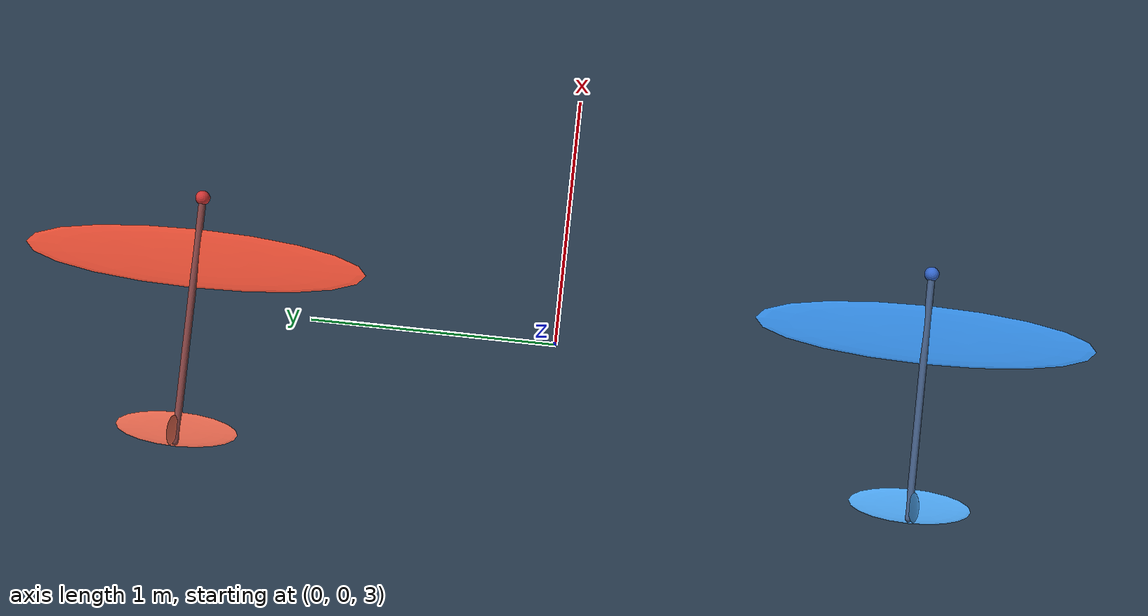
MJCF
<mujoco model="fly_compare">
  <statistic extent="8" center="6 0 1.5"/>
  <visual>
    <global azimuth="90" elevation="-15"/>
    <rgba haze="0.15 0.25 0.35 1"/>
    <map zfar="120"/>
    <quality shadowsize="4096"/>
  </visual>
  <asset>
    <texture type="skybox" builtin="gradient" rgb1="0.3 0.5 0.7" rgb2="0 0 0" width="64" height="64"/>
    <texture name="grid" type="2d" builtin="checker" rgb1=".2 .3 .4" rgb2=".1 .15 .2" width="512" height="512" mark="cross" markrgb=".8 .8 .8"/>
    <material name="grid" texture="grid" texrepeat="16 16" reflectance="0.2"/>
  </asset>
  <option density="1.225" viscosity="1.8e-5" gravity="0 0 -9.81" integrator="implicitfast" timestep="0.002"/>

  <worldbody>
    <light pos="4 -4 8" dir="0 0.4 -1" diffuse="1 1 1"/>
    <geom name="ground" type="plane" pos="30 0 0" size="60 12 .1" material="grid" condim="3"/>

    <!-- RED: built-in ellipsoid fluid model -->
    <body name="glider_e" pos="0 1.5 3">
      <freejoint/>
      <geom name="fuse_e" type="capsule" fromto="0.45 0 0  -0.55 0 0" size="0.015" mass="0.05" rgba=".5 .25 .25 1"/>
      <geom name="nose_e" type="sphere" pos="0.45 0 0" size="0.03" mass="0.30" rgba=".8 .2 .2 1"/>
      <geom name="wing_e" type="ellipsoid" pos="0.20 0 0" euler="0 -2 0" size="0.12 0.7 0.008" mass="0.10" fluidshape="ellipsoid" rgba=".9 .3 .2 1"/>
      <geom name="tail_e" type="ellipsoid" pos="-0.50 0 0" size="0.07 0.25 0.006" mass="0.03" fluidshape="ellipsoid" rgba=".9 .4 .3 1"/>
      <geom name="fin_e"  type="ellipsoid" pos="-0.50 0 0.08" euler="90 0 0" size="0.06 0.10 0.005" mass="0.02" fluidshape="ellipsoid" rgba=".9 .4 .3 1"/>
    </body>

    <!-- BLUE: airfoil-polar via callback (no fluidshape; geoms named wing/tail/fin) -->
    <body name="glider_p" pos="0 -1.5 3">
      <freejoint/>
      <geom name="fuse_p" type="capsule" fromto="0.45 0 0  -0.55 0 0" size="0.015" mass="0.05" rgba=".25 .35 .5 1"/>
      <geom name="nose_p" type="sphere" pos="0.45 0 0" size="0.03" mass="0.30" rgba=".2 .4 .8 1"/>
      <geom name="wing" type="ellipsoid" pos="0.20 0 0" euler="0 -2 0" size="0.12 0.7 0.008" mass="0.10" rgba=".2 .55 .9 1"/>
      <geom name="tail" type="ellipsoid" pos="-0.50 0 0" size="0.07 0.25 0.006" mass="0.03" rgba=".3 .65 .95 1"/>
      <geom name="fin"  type="ellipsoid" pos="-0.50 0 0.08" euler="90 0 0" size="0.06 0.10 0.005" mass="0.02" rgba=".3 .65 .95 1"/>
    </body>
  </worldbody>

  <keyframe>
    <key name="launch" qpos="0 1.5 3 1 0 0 0   0 -1.5 3 1 0 0 0" qvel="14 0 0 0 0 0   14 0 0 0 0 0"/>
  </keyframe>
</mujoco>
